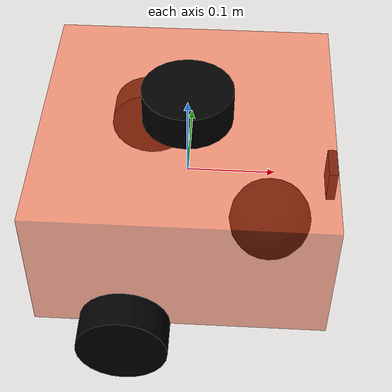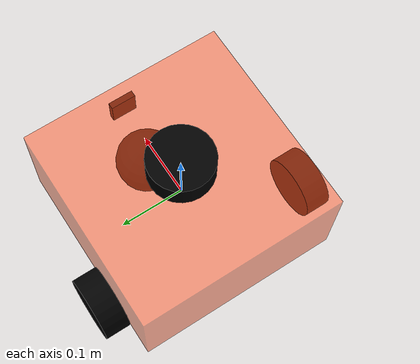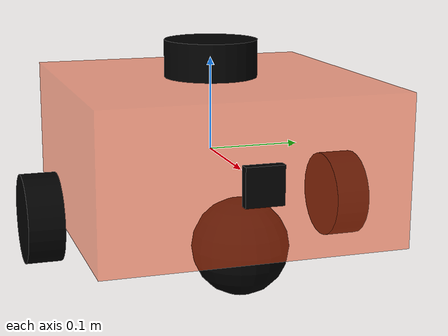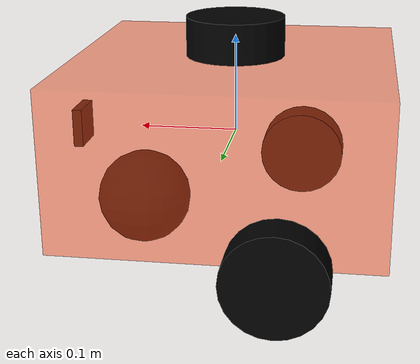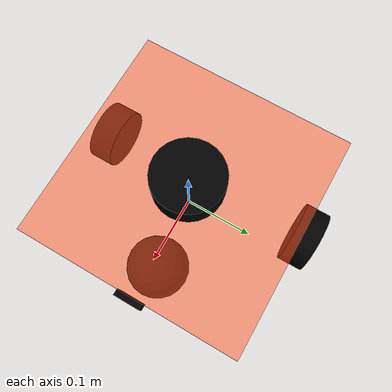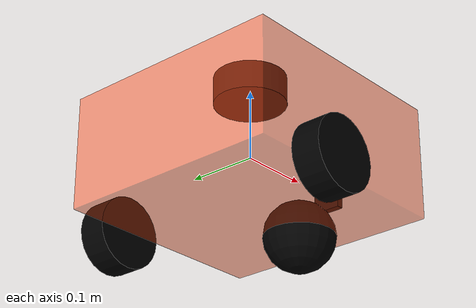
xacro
<?xml version="1.0"?>
<robot xmlns:xacro="http://www.ros.org/wiki/xacro"  name="dyn">

    <xacro:include filename="robot_core.xacro"/>

    <xacro:include filename="gazebo_control.xacro"/>

    <xacro:include filename="lidar.xacro"/>

    <xacro:include filename="depth_camera.xacro"/>

</robot>

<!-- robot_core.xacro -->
<robot xmlns:xacro="http://www.ros.org/wiki/xacro">

    <xacro:include filename="inertial_macros.xacro"/>

	<!-- COLORS -->

    <material name="orange">
    	<color rgba="1 0.3 0.1 0.5"/>
    </material>

    <material name="black">
    	<color rgba="0 0 0 1"/>
    </material>

    <!-- BASE_FOOTPRINT -->

	<link name="base_footprint">
	</link>

	<!-- BASE_LINK -->

    <link name="base_link">
		<visual>
    	    <origin xyz="0 0 0"/>
    	    <geometry>
    	    	<box size="0.32 0.32 0.16"/>
    	    </geometry>
    	    <material name="orange"/>
    	</visual>
    	<collision>
    	    <origin xyz="0 0 0"/>
    	    <geometry>
    	    	<box size="0.32 0.32 0.16"/>
    	    </geometry>
    	</collision>
    	<xacro:inertial_box mass="0.5" x ="0.32" y="0.32" z="0.16">
    	    <origin xyz="0 0 0" rpy="0 0 0"/>
    	</xacro:inertial_box>
    </link>

    <gazebo reference="base_link">
        <material>Gazebo/Orange</material>
    </gazebo>

    <joint name="base_link_joint" type="fixed">
    	<parent link="base_link"/>
    	<child link="base_footprint"/>
    	<origin xyz="0 0 -0.13"/>
    </joint>

    <!-- LEFT_WHEEL -->

    <link name="left_wheel">
    	<visual>
    	    <geometry>
    	        <cylinder radius="0.05" length="0.04"/>
    	    </geometry>
    	    <material name="black"/>
    	</visual>
    	<collision>
    	    <geometry>
    	        <cylinder radius="0.05" length="0.04"/>
    	    </geometry>
    	</collision>
    	<xacro:inertial_cylinder mass="0.1" length="0.04" radius="0.05">
    	    <origin xyz="0 0 0" rpy="0 0 0"/>
    	</xacro:inertial_cylinder>
    </link>

    <gazebo reference="left_wheel">
        <material>Gazebo/Black</material>
    </gazebo>

    <joint name="left_wheel_joint" type="continuous">
    	<parent link="base_link"/>
    	<child link="left_wheel"/>
    	<origin xyz="-0.06 0.18 -0.08" rpy="-${pi/2} 0 0"/>
    	<axis xyz="0 0 1"/>
    </joint>

    <!-- RIGHT_WHEEL -->

    <link name="right_wheel">
    	<visual>
    	    <geometry>
    	        <cylinder radius="0.05" length="0.04"/>
    	    </geometry>
    	    <material name="black"/>
    	</visual>
    	<collision>
    	    <geometry>
    	        <cylinder radius="0.05" length="0.04"/>
    	    </geometry>
    	</collision>
    	<xacro:inertial_cylinder mass="0.1" length="0.04" radius="0.05">
    	    <origin xyz="0 0 0" rpy="0 0 0"/>
    	</xacro:inertial_cylinder>
    </link>

    <gazebo reference="right_wheel">
        <material>Gazebo/Black</material>
    </gazebo>

    <joint name="right_wheel_joint" type="continuous">
    	<parent link="base_link"/>
    	<child link="right_wheel"/>
    	<origin xyz="-0.06 -0.18 -0.08" rpy="${pi/2} 0 0"/>
    	<axis xyz="0 0 -1"/>
    </joint>

    <!-- CASTER WHEEL -->

    <link name="caster_wheel">
        <visual>
            <geometry>
    	        <sphere radius="0.05"/>
    	    </geometry>
    	    <material name="black"/>
    	</visual>
    	<collision>
            <geometry>
    	        <sphere radius="0.05"/>
    	    </geometry>
    	</collision>
    	<xacro:inertial_sphere mass="0.1" radius="0.05">
    	    <origin xyz="0 0 0" rpy="0 0 0"/>
    	</xacro:inertial_sphere>
    </link>

    <gazebo reference="caster_wheel">
        <material>Gazebo/Black</material>
        <mu1 value="0.001"/>
        <mu2 value="0.001"/>
    </gazebo>

    <joint name="caster_wheel_joint" type="fixed">
        <parent link="base_link"/>
        <child link="caster_wheel"/>
        <origin xyz="0.1 0 -0.08"/>
    </joint>

</robot>

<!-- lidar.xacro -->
<robot xmlns:xacro="http://www.ros.org/wiki/xacro">

    <link name="laser_frame">
        <visual>
    	    <geometry>
    	        <cylinder radius="0.05" length="0.04"/>
    	    </geometry>
    	    <material name="black"/>
    	</visual>
    	<collision>
    	    <geometry>
    	        <cylinder radius="0.05" length="0.04"/>
    	    </geometry>
    	</collision>
    	<xacro:inertial_cylinder mass="0.1" length="0.04" radius="0.05">
    	    <origin xyz="0 0 0" rpy="0 0 0"/>
    	</xacro:inertial_cylinder>
    </link>

    <gazebo reference="laser_frame">
        <material>Gazebo/Black</material>
        <sensor name="laser" type="ray">
            <pose>0 0 0 0 0 0</pose>
            <visualize>true</visualize>
            <update_rate>10</update_rate>
            <ray>
                <scan>
                    <horizontal>
                        <samples>360</samples>
                        <min_angle>-3.14</min_angle>
                        <max_angle>3.14</max_angle>
                    </horizontal>
                </scan>
                <range>
                    <min>0.3</min>
                    <max>12</max>
                </range>
            </ray>
            <plugin name="laser_controller" filename="libgazebo_ros_ray_sensor.so">
                <ros>
                    <argument>~/out:=scan</argument>
                </ros>
                <output_type>sensor_msgs/LaserScan</output_type>
                <frame_name>laser_frame</frame_name>
            </plugin>
        </sensor>
    </gazebo>

    <joint name="laser_joint" type="fixed">
        <parent link="base_link"/>
        <child link="laser_frame"/>
        <origin xyz="0 0 0.1" rpy="0 0 0"/>
    </joint>

</robot>

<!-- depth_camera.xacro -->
<robot xmlns:xacro="http://www.ros.org/wiki/xacro" >

    <joint name="camera_joint" type="fixed">
        <parent link="base_link"/>
        <child link="camera_link"/>
        <origin xyz="0.165 0 0" rpy="0 0 0"/>
    </joint>

    <link name="camera_link">
        <visual>
            <geometry>
                <box size="0.01 0.04 0.04"/>
            </geometry>
            <material name="black"/>
        </visual>
    </link>

    <joint name="camera_optical_joint" type="fixed">
        <parent link="camera_link"/>
        <child link="camera_link_optical"/>
        <origin xyz="0 0 0" rpy="${-pi/2} 0 ${-pi/2}"/>
    </joint>

    <link name="camera_link_optical"></link>

    <gazebo reference="camera_link">
        <material>Gazebo/Black</material>

        <sensor name="camera" type="depth">
            <pose> 0 0 0 0 0 0 </pose>
            <visualize>true</visualize>
            <update_rate>10</update_rate>
            <camera>
                <horizontal_fov>1.089</horizontal_fov>
                <image>
                    <format>B8G8R8</format>
                    <width>640</width>
                    <height>480</height>
                </image>
                <clip>
                    <near>0.05</near>
                    <far>8.0</far>
                </clip>
            </camera>
            <plugin name="camera_controller" filename="libgazebo_ros_camera.so">
                <frame_name>camera_link_optical</frame_name>
                <min_depth>0.1</min_depth>
                <max_depth>100.0</max_depth>
            </plugin>
        </sensor>
    </gazebo>

</robot>
